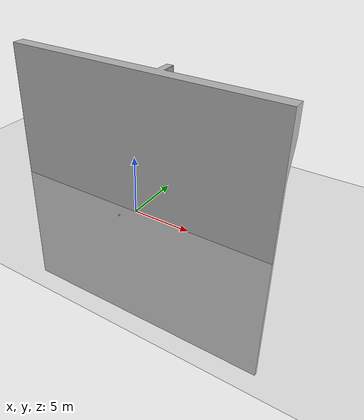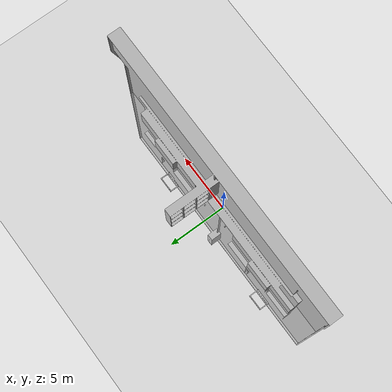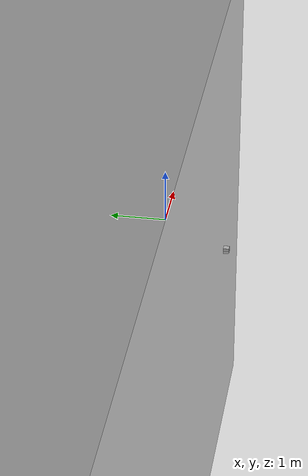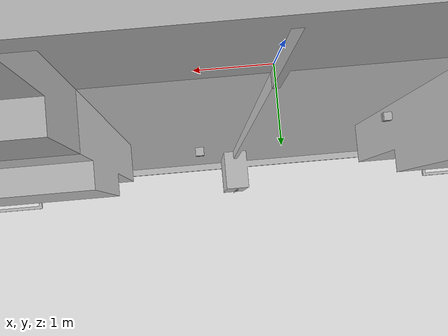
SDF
<sdf version="1.4">
	<world name="default">
		<scene>
	      <shadows>false</shadows>
	      <grid>false</grid>
          <origin_visual>false</origin_visual>

	      <sky>
	        <clouds>
	          <speed>4</speed>
	        </clouds>
	      </sky>
	    </scene>
		<include>
			<uri>model://sun</uri>
		</include>

		<model name='ground_plane'>
			<static>1</static>
			<link name='link'>
				<collision name='collision'>
					<geometry>
						<plane>
							<normal>0 0 1</normal>
							<size>100 100</size>
						</plane>
					</geometry>
					<surface>
						<friction>
							<ode>
								<mu>100</mu>
								<mu2>50</mu2>
							</ode>
						</friction>
						<bounce/>
						<contact>
							<ode/>
						</contact>
					</surface>
					<max_contacts>10</max_contacts>
				</collision>
				<visual name='visual'>
					<cast_shadows>0</cast_shadows>
					<geometry>
						<plane>
							<normal>0 0 1</normal>
							<size>100 100</size>
						</plane>
					</geometry>
					<material>
						<script>
							<uri>file://media/materials/scripts/gazebo.material</uri>
							<name>Gazebo/Grey</name>
						</script>
					</material>
				</visual>
				<velocity_decay>
					<linear>0</linear>
					<angular>0</angular>
				</velocity_decay>
				<self_collide>0</self_collide>
				<kinematic>0</kinematic>
				<gravity>1</gravity>
			</link>
			<link name='camera_link'>
				<pose>0 0 4.8768 0 1.57 1.57</pose> <!-- camera placed at a heigth of 16 feet-->
				<inertial>
					<mass>0.1</mass>
					<inertia>
						<ixx>1</ixx>
						<ixy>0</ixy>
						<ixz>0</ixz>
						<iyy>1</iyy>
						<iyz>0</iyz>
						<izz>1</izz>
					</inertia>
				</inertial>
				<collision name='collision'>
					<geometry>
						<box>
							<size>0.001 0.001 0.001</size>
						</box>
					</geometry>
					<max_contacts>10</max_contacts>
					<surface>
						<bounce/>
						<friction>
							<ode/>
						</friction>
						<contact>
							<ode/>
						</contact>
					</surface>
				</collision>
				<visual name='visual'>
					<geometry>
						<box>
							<size>0.001 0.001 0.001</size>
						</box>
					</geometry>
				</visual>
								<sensor type='camera' name='camera'>
					<camera name='overhead_cam'>
						<horizontal_fov>1.0</horizontal_fov>
						<image>
							<width>1280</width>
							<height>1280</height>
						</image>
						<clip>
							<near>0.1</near>
							<far>5</far>
						</clip>

					</camera>

					<plugin name='camera_control' filename='libgazebo_ros_camera.so'>
						<alwaysOn>true</alwaysOn>
						<updateRate>0</updateRate>
						<cameraName>gazebo/overhead_cam</cameraName>
						<imageTopicName>image_rect_color</imageTopicName>
						<cameraInfoTopicName>camera_info</cameraInfoTopicName>
						<frameName>overhead_cam_frame</frameName>
					</plugin>
					<always_on>1</always_on>
					<update_rate>30</update_rate>
					<visualize>0</visualize>

				</sensor>

				<gravity>1</gravity>
			</link>
		</model>

		<include>
			<uri>model://arena</uri>
			<pose>0 0 0.001 0 0 0</pose>
		</include>

		<include>
			<uri>model://yellow_box</uri>
			<name>box_1</name>
			<pose>-1.312795 0.767620 0 0 0 0</pose>
		</include>

		<include>
			<uri>model://yellow_box</uri>
			<name>box_2</name>
			<pose>1.000450 1.000450 0 0 0 0</pose>
		</include>

		<include>
			<uri>model://yellow_box</uri>
			<name>box_3</name>
			<pose>-0.802892 -1.210398 0 0 0 0</pose>
		</include>

		<!-- Only one ROS interface plugin is required per world, as any other plugin can connect a Gazebo
		topic to a ROS topic (or vise versa). -->
		<plugin name="ros_interface_plugin" filename="librotors_gazebo_ros_interface_plugin.so"/>

		<spherical_coordinates>
			<surface_model>EARTH_WGS84</surface_model>
			<latitude_deg>47.3667</latitude_deg>
			<longitude_deg>8.5500</longitude_deg>
			<elevation>0.0</elevation>
			<heading_deg>0</heading_deg>
		</spherical_coordinates>
		<physics type='ode'>
			<ode>
				<solver>
					<type>quick</type>
					<iters>1000</iters>
					<sor>1.3</sor>
				</solver>
				<constraints>
					<cfm>0</cfm>
					<erp>0.2</erp>
					<contact_max_correcting_vel>100</contact_max_correcting_vel>
					<contact_surface_layer>0.001</contact_surface_layer>
				</constraints>
			</ode>
			<max_step_size>0.001</max_step_size>
			<real_time_factor>1</real_time_factor>
			<real_time_update_rate>1000</real_time_update_rate>
			<gravity>0 0 -9.8</gravity>
		</physics>
	</world>
</sdf>

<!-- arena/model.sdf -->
<sdf version="1.4">
    <model name="arena">
      <pose>0 0 0 0 0 0</pose>
      <static>true</static>
      <link name="link">
        <visual name="visual">
          <geometry>
            <mesh>
              <uri>model://arena/arena.obj</uri>
              <scale>2 2 2</scale>
            </mesh>
          </geometry>
        </visual>

        <collision name="collision">
          <geometry>
            <plane>
              <normal>0 0 1</normal>
              <size>2.43 2.43</size>
            </plane>
          </geometry>
          <surface>
            <friction>
              <ode>
                <mu>100</mu>
                <mu2>50</mu2>
              </ode>
            </friction>
          </surface>
        </collision>
      </link>
    </model>
</sdf>

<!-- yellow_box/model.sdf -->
<sdf version="1.4">
    <model name="yellow_box">
      <pose>0 0 0 0 0 0</pose>
      <static>false</static>
      <link name="link">
        <visual name="visual">
          <geometry>
            <mesh>
              <uri>model://yellow_box/box.obj</uri>
              <scale>2 2 2</scale>
            </mesh>
          </geometry>
        </visual>

        <collision name="collision">
          <geometry>
            <box>
              <size>0.1 0.1 0.1</size>
            </box>
          </geometry>
          <surface>
            <friction>
              <ode>
                <mu>100</mu>
                <mu2>50</mu2>
              </ode>
            </friction>
          </surface>
        </collision>
      </link>
    </model>
</sdf>
